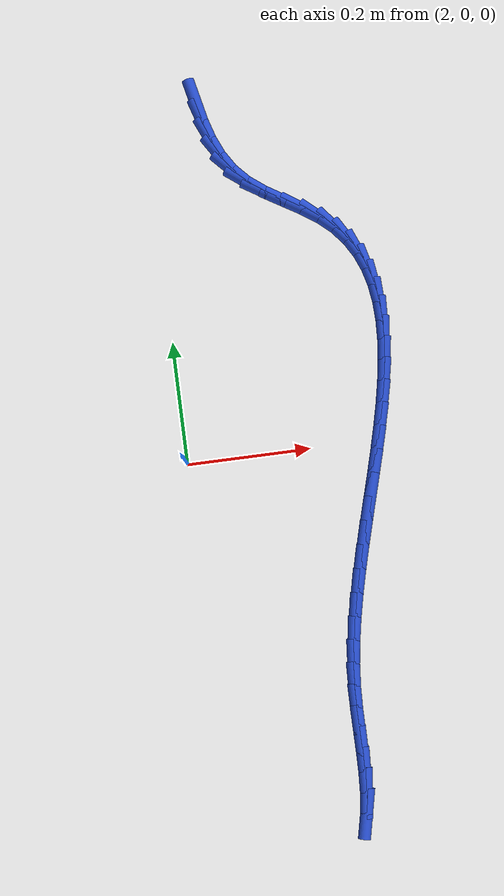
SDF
<sdf version="1.6">
 <world name="default">
  <model name="ground_plane">
   <static>1</static>
   <link name="link">
    <collision name="collision">
     <geometry><plane><normal>0 0 1</normal><size>100 100</size></plane></geometry>
     <surface><friction><ode><mu>100</mu><mu2>50</mu2></ode></friction></surface>
    </collision>
    <visual name="visual">
     <cast_shadows>0</cast_shadows>
     <geometry><plane><normal>0 0 1</normal><size>100 100</size></plane></geometry>
     <material>
      <script><uri>file://media/materials/scripts/gazebo.material</uri><name>Gazebo/WhiteGlow</name></script>
     </material>
    </visual>
   </link>
  </model>
  <model name="line">
   <link name="link_94">
    <pose>2.086861412520426 0.5895235560366796 0.01 0 1.57 -1.3606525324062444</pose>
    <collision name="collision">
     <geometry><cylinder><radius>0.01</radius><length>0.08</length></cylinder></geometry>
    </collision>
    <visual name="visual">
     <material>
      <script><name>Gazebo/Blue</name><uri>file://media/materials/scripts/gazebo.material</uri></script>
     </material>
     <geometry><cylinder><radius>0.01</radius><length>0.08</length></cylinder></geometry>
    </visual>
   </link>
   <link name="link_95">
    <pose>2.093874145318041 0.5566451204333193 0.01 0 1.57 -1.2802147771448245</pose>
    <collision name="collision">
     <geometry><cylinder><radius>0.01</radius><length>0.08</length></cylinder></geometry>
    </collision>
    <visual name="visual">
     <material>
      <script><name>Gazebo/Blue</name><uri>file://media/materials/scripts/gazebo.material</uri></script>
     </material>
     <geometry><cylinder><radius>0.01</radius><length>0.08</length></cylinder></geometry>
    </visual>
   </link>
   <link name="link_96">
    <pose>2.103191192351211 0.5254892455390446 0.01 0 1.57 -1.164054511109105</pose>
    <collision name="collision">
     <geometry><cylinder><radius>0.01</radius><length>0.08</length></cylinder></geometry>
    </collision>
    <visual name="visual">
     <material>
      <script><name>Gazebo/Blue</name><uri>file://media/materials/scripts/gazebo.material</uri></script>
     </material>
     <geometry><cylinder><radius>0.01</radius><length>0.08</length></cylinder></geometry>
    </visual>
   </link>
   <link name="link_97">
    <pose>2.1156613195247 0.49654031726469017 0.01 0 1.57 -1.0105288440081337</pose>
    <collision name="collision">
     <geometry><cylinder><radius>0.01</radius><length>0.08</length></cylinder></geometry>
    </collision>
    <visual name="visual">
     <material>
      <script><name>Gazebo/Blue</name><uri>file://media/materials/scripts/gazebo.material</uri></script>
     </material>
     <geometry><cylinder><radius>0.01</radius><length>0.08</length></cylinder></geometry>
    </visual>
   </link>
   <link name="link_98">
    <pose>2.132133292743273 0.47028272152108924 0.01 0 1.57 -0.825188751878554</pose>
    <collision name="collision">
     <geometry><cylinder><radius>0.01</radius><length>0.08</length></cylinder></geometry>
    </collision>
    <visual name="visual">
     <material>
      <script><name>Gazebo/Blue</name><uri>file://media/materials/scripts/gazebo.material</uri></script>
     </material>
     <geometry><cylinder><radius>0.01</radius><length>0.08</length></cylinder></geometry>
    </visual>
   </link>
   <link name="link_99">
    <pose>2.1534505105913393 0.44719778269163846 0.01 0 1.57 -0.6538562144355374</pose>
    <collision name="collision">
     <geometry><cylinder><radius>0.01</radius><length>0.08</length></cylinder></geometry>
    </collision>
    <visual name="visual">
     <material>
      <script><name>Gazebo/Blue</name><uri>file://media/materials/scripts/gazebo.material</uri></script>
     </material>
     <geometry><cylinder><radius>0.01</radius><length>0.08</length></cylinder></geometry>
    </visual>
   </link>
   <link name="link_100">
    <pose>2.179510896261572 0.4272275246034579 0.01 0 1.57 -0.5621582457375275</pose>
    <collision name="collision">
     <geometry><cylinder><radius>0.01</radius><length>0.08</length></cylinder></geometry>
    </collision>
    <visual name="visual">
     <material>
      <script><name>Gazebo/Blue</name><uri>file://media/materials/scripts/gazebo.material</uri></script>
     </material>
     <geometry><cylinder><radius>0.01</radius><length>0.08</length></cylinder></geometry>
    </visual>
   </link>
   <link name="link_101">
    <pose>2.2081903535109095 0.4091606082187778 0.01 0 1.57 -0.5448625188656621</pose>
    <collision name="collision">
     <geometry><cylinder><radius>0.01</radius><length>0.08</length></cylinder></geometry>
    </collision>
    <visual name="visual">
     <material>
      <script><name>Gazebo/Blue</name><uri>file://media/materials/scripts/gazebo.material</uri></script>
     </material>
     <geometry><cylinder><radius>0.01</radius><length>0.08</length></cylinder></geometry>
    </visual>
   </link>
   <link name="link_102">
    <pose>2.2371042546540023 0.3916370869813479 0.01 0 1.57 -0.6007638726453175</pose>
    <collision name="collision">
     <geometry><cylinder><radius>0.01</radius><length>0.08</length></cylinder></geometry>
    </collision>
    <visual name="visual">
     <material>
      <script><name>Gazebo/Blue</name><uri>file://media/materials/scripts/gazebo.material</uri></script>
     </material>
     <geometry><cylinder><radius>0.01</radius><length>0.08</length></cylinder></geometry>
    </visual>
   </link>
   <link name="link_103">
    <pose>2.263867972005505 0.37329701433491724 0.01 0 1.57 -0.7313365162906994</pose>
    <collision name="collision">
     <geometry><cylinder><radius>0.01</radius><length>0.08</length></cylinder></geometry>
    </collision>
    <visual name="visual">
     <material>
      <script><name>Gazebo/Blue</name><uri>file://media/materials/scripts/gazebo.material</uri></script>
     </material>
     <geometry><cylinder><radius>0.01</radius><length>0.08</length></cylinder></geometry>
    </visual>
   </link>
   <link name="link_104">
    <pose>2.286488939531758 0.35299860228371555 0.01 0 1.57 -0.8866435002766324</pose>
    <collision name="collision">
     <geometry><cylinder><radius>0.01</radius><length>0.08</length></cylinder></geometry>
    </collision>
    <visual name="visual">
     <material>
      <script><name>Gazebo/Blue</name><uri>file://media/materials/scripts/gazebo.material</uri></script>
     </material>
     <geometry><cylinder><radius>0.01</radius><length>0.08</length></cylinder></geometry>
    </visual>
   </link>
   <link name="link_105">
    <pose>2.3047610048749982 0.33059409383264715 0.01 0 1.57 -1.0425212849084489</pose>
    <collision name="collision">
     <geometry><cylinder><radius>0.01</radius><length>0.08</length></cylinder></geometry>
    </collision>
    <visual name="visual">
     <material>
      <script><name>Gazebo/Blue</name><uri>file://media/materials/scripts/gazebo.material</uri></script>
     </material>
     <geometry><cylinder><radius>0.01</radius><length>0.08</length></cylinder></geometry>
    </visual>
   </link>
   <link name="link_106">
    <pose>2.318986541254489 0.306218695666879 0.01 0 1.57 -1.1903888582079327</pose>
    <collision name="collision">
     <geometry><cylinder><radius>0.01</radius><length>0.08</length></cylinder></geometry>
    </collision>
    <visual name="visual">
     <material>
      <script><name>Gazebo/Blue</name><uri>file://media/materials/scripts/gazebo.material</uri></script>
     </material>
     <geometry><cylinder><radius>0.01</radius><length>0.08</length></cylinder></geometry>
    </visual>
   </link>
   <link name="link_107">
    <pose>2.329467958423115 0.28000763480032487 0.01 0 1.57 -1.3237337231109139</pose>
    <collision name="collision">
     <geometry><cylinder><radius>0.01</radius><length>0.08</length></cylinder></geometry>
    </collision>
    <visual name="visual">
     <material>
      <script><name>Gazebo/Blue</name><uri>file://media/materials/scripts/gazebo.material</uri></script>
     </material>
     <geometry><cylinder><radius>0.01</radius><length>0.08</length></cylinder></geometry>
    </visual>
   </link>
   <link name="link_108">
    <pose>2.3365076661337616 0.2520961382468984 0.01 0 1.57 -1.439238880143263</pose>
    <collision name="collision">
     <geometry><cylinder><radius>0.01</radius><length>0.08</length></cylinder></geometry>
    </collision>
    <visual name="visual">
     <material>
      <script><name>Gazebo/Blue</name><uri>file://media/materials/scripts/gazebo.material</uri></script>
     </material>
     <geometry><cylinder><radius>0.01</radius><length>0.08</length></cylinder></geometry>
    </visual>
   </link>
   <link name="link_109">
    <pose>2.340408074139314 0.22261943302051448 0.01 0 1.57 -1.5363992855295276</pose>
    <collision name="collision">
     <geometry><cylinder><radius>0.01</radius><length>0.08</length></cylinder></geometry>
    </collision>
    <visual name="visual">
     <material>
      <script><name>Gazebo/Blue</name><uri>file://media/materials/scripts/gazebo.material</uri></script>
     </material>
     <geometry><cylinder><radius>0.01</radius><length>0.08</length></cylinder></geometry>
    </visual>
   </link>
   <link name="link_110">
    <pose>2.341471592192656 0.19171274613508635 0.01 0 1.57 1.5251480507874238</pose>
    <collision name="collision">
     <geometry><cylinder><radius>0.01</radius><length>0.08</length></cylinder></geometry>
    </collision>
    <visual name="visual">
     <material>
      <script><name>Gazebo/Blue</name><uri>file://media/materials/scripts/gazebo.material</uri></script>
     </material>
     <geometry><cylinder><radius>0.01</radius><length>0.08</length></cylinder></geometry>
    </visual>
   </link>
   <link name="link_111">
    <pose>2.340000630046673 0.15951130460452892 0.01 0 1.57 1.4602498989599944</pose>
    <collision name="collision">
     <geometry><cylinder><radius>0.01</radius><length>0.08</length></cylinder></geometry>
    </collision>
    <visual name="visual">
     <material>
      <script><name>Gazebo/Blue</name><uri>file://media/materials/scripts/gazebo.material</uri></script>
     </material>
     <geometry><cylinder><radius>0.01</radius><length>0.08</length></cylinder></geometry>
    </visual>
   </link>
   <link name="link_112">
    <pose>2.3362975974542506 0.12615033544275545 0.01 0 1.57 1.4084271934059505</pose>
    <collision name="collision">
     <geometry><cylinder><radius>0.01</radius><length>0.08</length></cylinder></geometry>
    </collision>
    <visual name="visual">
     <material>
      <script><name>Gazebo/Blue</name><uri>file://media/materials/scripts/gazebo.material</uri></script>
     </material>
     <geometry><cylinder><radius>0.01</radius><length>0.08</length></cylinder></geometry>
    </visual>
   </link>
   <link name="link_113">
    <pose>2.330664904168274 0.0917650656636809 0.01 0 1.57 1.3678169417614707</pose>
    <collision name="collision">
     <geometry><cylinder><radius>0.01</radius><length>0.08</length></cylinder></geometry>
    </collision>
    <visual name="visual">
     <material>
      <script><name>Gazebo/Blue</name><uri>file://media/materials/scripts/gazebo.material</uri></script>
     </material>
     <geometry><cylinder><radius>0.01</radius><length>0.08</length></cylinder></geometry>
    </visual>
   </link>
   <link name="link_114">
    <pose>2.323404959941627 0.05649072228121841 0.01 0 1.57 1.336878610511397</pose>
    <collision name="collision">
     <geometry><cylinder><radius>0.01</radius><length>0.08</length></cylinder></geometry>
    </collision>
    <visual name="visual">
     <material>
      <script><name>Gazebo/Blue</name><uri>file://media/materials/scripts/gazebo.material</uri></script>
     </material>
     <geometry><cylinder><radius>0.01</radius><length>0.08</length></cylinder></geometry>
    </visual>
   </link>
   <link name="link_115">
    <pose>2.314820174527196 0.02046253230928302 0.01 0 1.57 1.3144089325983697</pose>
    <collision name="collision">
     <geometry><cylinder><radius>0.01</radius><length>0.08</length></cylinder></geometry>
    </collision>
    <visual name="visual">
     <material>
      <script><name>Gazebo/Blue</name><uri>file://media/materials/scripts/gazebo.material</uri></script>
     </material>
     <geometry><cylinder><radius>0.01</radius><length>0.08</length></cylinder></geometry>
    </visual>
   </link>
   <link name="link_116">
    <pose>2.305212957677865 -0.016184277238211683 0.01 0 1.57 1.299517129632945</pose>
    <collision name="collision">
     <geometry><cylinder><radius>0.01</radius><length>0.08</length></cylinder></geometry>
    </collision>
    <visual name="visual">
     <material>
      <script><name>Gazebo/Blue</name><uri>file://media/materials/scripts/gazebo.material</uri></script>
     </material>
     <geometry><cylinder><radius>0.01</radius><length>0.08</length></cylinder></geometry>
    </visual>
   </link>
   <link name="link_117">
    <pose>2.294885719146519 -0.05331447934735256 0.01 0 1.57 1.2915904551248218</pose>
    <collision name="collision">
     <geometry><cylinder><radius>0.01</radius><length>0.08</length></cylinder></geometry>
    </collision>
    <visual name="visual">
     <material>
      <script><name>Gazebo/Blue</name><uri>file://media/materials/scripts/gazebo.material</uri></script>
     </material>
     <geometry><cylinder><radius>0.01</radius><length>0.08</length></cylinder></geometry>
    </visual>
   </link>
   <link name="link_118">
    <pose>2.2841408686860443 -0.0907928470042236 0.01 0 1.57 1.2902633133513313</pose>
    <collision name="collision">
     <geometry><cylinder><radius>0.01</radius><length>0.08</length></cylinder></geometry>
    </collision>
    <visual name="visual">
     <material>
      <script><name>Gazebo/Blue</name><uri>file://media/materials/scripts/gazebo.material</uri></script>
     </material>
     <geometry><cylinder><radius>0.01</radius><length>0.08</length></cylinder></geometry>
    </visual>
   </link>
   <link name="link_119">
    <pose>2.2732808160493234 -0.1284841531949117 0.01 0 1.57 1.2953949323016638</pose>
    <collision name="collision">
     <geometry><cylinder><radius>0.01</radius><length>0.08</length></cylinder></geometry>
    </collision>
    <visual name="visual">
     <material>
      <script><name>Gazebo/Blue</name><uri>file://media/materials/scripts/gazebo.material</uri></script>
     </material>
     <geometry><cylinder><radius>0.01</radius><length>0.08</length></cylinder></geometry>
    </visual>
   </link>
   <link name="link_120">
    <pose>2.2626079709892446 -0.16625317090550285 0.01 0 1.57 1.3070567586432404</pose>
    <collision name="collision">
     <geometry><cylinder><radius>0.01</radius><length>0.08</length></cylinder></geometry>
    </collision>
    <visual name="visual">
     <material>
      <script><name>Gazebo/Blue</name><uri>file://media/materials/scripts/gazebo.material</uri></script>
     </material>
     <geometry><cylinder><radius>0.01</radius><length>0.08</length></cylinder></geometry>
    </visual>
   </link>
   <link name="link_121">
    <pose>2.2524247432586906 -0.20396467312208288 0.01 0 1.57 1.3255289324432105</pose>
    <collision name="collision">
     <geometry><cylinder><radius>0.01</radius><length>0.08</length></cylinder></geometry>
    </collision>
    <visual name="visual">
     <material>
      <script><name>Gazebo/Blue</name><uri>file://media/materials/scripts/gazebo.material</uri></script>
     </material>
     <geometry><cylinder><radius>0.01</radius><length>0.08</length></cylinder></geometry>
    </visual>
   </link>
   <link name="link_122">
    <pose>2.243033542610546 -0.2414834328307386 0.01 0 1.57 1.3513039106236062</pose>
    <collision name="collision">
     <geometry><cylinder><radius>0.01</radius><length>0.08</length></cylinder></geometry>
    </collision>
    <visual name="visual">
     <material>
      <script><name>Gazebo/Blue</name><uri>file://media/materials/scripts/gazebo.material</uri></script>
     </material>
     <geometry><cylinder><radius>0.01</radius><length>0.08</length></cylinder></geometry>
    </visual>
   </link>
   <link name="link_123">
    <pose>2.2347367787976977 -0.2786742230175542 0.01 0 1.57 1.385093486131497</pose>
    <collision name="collision">
     <geometry><cylinder><radius>0.01</radius><length>0.08</length></cylinder></geometry>
    </collision>
    <visual name="visual">
     <material>
      <script><name>Gazebo/Blue</name><uri>file://media/materials/scripts/gazebo.material</uri></script>
     </material>
     <geometry><cylinder><radius>0.01</radius><length>0.08</length></cylinder></geometry>
    </visual>
   </link>
   <link name="link_124">
    <pose>2.2278368615730297 -0.31540181666861644 0.01 0 1.57 1.4278320470783454</pose>
    <collision name="collision">
     <geometry><cylinder><radius>0.01</radius><length>0.08</length></cylinder></geometry>
    </collision>
    <visual name="visual">
     <material>
      <script><name>Gazebo/Blue</name><uri>file://media/materials/scripts/gazebo.material</uri></script>
     </material>
     <geometry><cylinder><radius>0.01</radius><length>0.08</length></cylinder></geometry>
    </visual>
   </link>
   <link name="link_125">
    <pose>2.2226362006894265 -0.3515309867700112 0.01 0 1.57 1.4805470625343147</pose>
    <collision name="collision">
     <geometry><cylinder><radius>0.01</radius><length>0.08</length></cylinder></geometry>
    </collision>
    <visual name="visual">
     <material>
      <script><name>Gazebo/Blue</name><uri>file://media/materials/scripts/gazebo.material</uri></script>
     </material>
     <geometry><cylinder><radius>0.01</radius><length>0.08</length></cylinder></geometry>
    </visual>
   </link>
   <link name="link_126">
    <pose>2.2194330063273426 -0.3869273200780734 0.01 0 1.57 1.5334921093773208</pose>
    <collision name="collision">
     <geometry><cylinder><radius>0.01</radius><length>0.08</length></cylinder></geometry>
    </collision>
    <visual name="visual">
     <material>
      <script><name>Gazebo/Blue</name><uri>file://media/materials/scripts/gazebo.material</uri></script>
     </material>
     <geometry><cylinder><radius>0.01</radius><length>0.08</length></cylinder></geometry>
    </visual>
   </link>
   <link name="link_127">
    <pose>2.2181415514457026 -0.42153080061053905 0.01 0 1.57 1.5663048387319152</pose>
    <collision name="collision">
     <geometry><cylinder><radius>0.01</radius><length>0.08</length></cylinder></geometry>
    </collision>
    <visual name="visual">
     <material>
      <script><name>Gazebo/Blue</name><uri>file://media/materials/scripts/gazebo.material</uri></script>
     </material>
     <geometry><cylinder><radius>0.01</radius><length>0.08</length></cylinder></geometry>
    </visual>
   </link>
   <link name="link_128">
    <pose>2.2179893622519358 -0.45541448642622534 0.01 0 1.57 -1.566485334682977</pose>
    <collision name="collision">
     <geometry><cylinder><radius>0.01</radius><length>0.08</length></cylinder></geometry>
    </collision>
    <visual name="visual">
     <material>
      <script><name>Gazebo/Blue</name><uri>file://media/materials/scripts/gazebo.material</uri></script>
     </material>
     <geometry><cylinder><radius>0.01</radius><length>0.08</length></cylinder></geometry>
    </visual>
   </link>
   <link name="link_129">
    <pose>2.218132706891757 -0.4886652435826193 0.01 0 1.57 1.5584178989200206</pose>
    <collision name="collision">
     <geometry><cylinder><radius>0.01</radius><length>0.08</length></cylinder></geometry>
    </collision>
    <visual name="visual">
     <material>
      <script><name>Gazebo/Blue</name><uri>file://media/materials/scripts/gazebo.material</uri></script>
     </material>
     <geometry><cylinder><radius>0.01</radius><length>0.08</length></cylinder></geometry>
    </visual>
   </link>
   <link name="link_130">
    <pose>2.217727853510881 -0.5213699381372083 0.01 0 1.57 1.5151319026527708</pose>
    <collision name="collision">
     <geometry><cylinder><radius>0.01</radius><length>0.08</length></cylinder></geometry>
    </collision>
    <visual name="visual">
     <material>
      <script><name>Gazebo/Blue</name><uri>file://media/materials/scripts/gazebo.material</uri></script>
     </material>
     <geometry><cylinder><radius>0.01</radius><length>0.08</length></cylinder></geometry>
    </visual>
   </link>
   <link name="link_131">
    <pose>2.215931070255023 -0.55361543614748 0.01 0 1.57 1.444949573407397</pose>
    <collision name="collision">
     <geometry><cylinder><radius>0.01</radius><length>0.08</length></cylinder></geometry>
    </collision>
    <visual name="visual">
     <material>
      <script><name>Gazebo/Blue</name><uri>file://media/materials/scripts/gazebo.material</uri></script>
     </material>
     <geometry><cylinder><radius>0.01</radius><length>0.08</length></cylinder></geometry>
    </visual>
   </link>
   <link name="link_132">
    <pose>2.211898625269898 -0.5854886036709198 0.01 0 1.57 1.3500013703133</pose>
    <collision name="collision">
     <geometry><cylinder><radius>0.01</radius><length>0.08</length></cylinder></geometry>
    </collision>
    <visual name="visual">
     <material>
      <script><name>Gazebo/Blue</name><uri>file://media/materials/scripts/gazebo.material</uri></script>
     </material>
     <geometry><cylinder><radius>0.01</radius><length>0.08</length></cylinder></geometry>
    </visual>
   </link>
  </model>
 </world>
</sdf>
